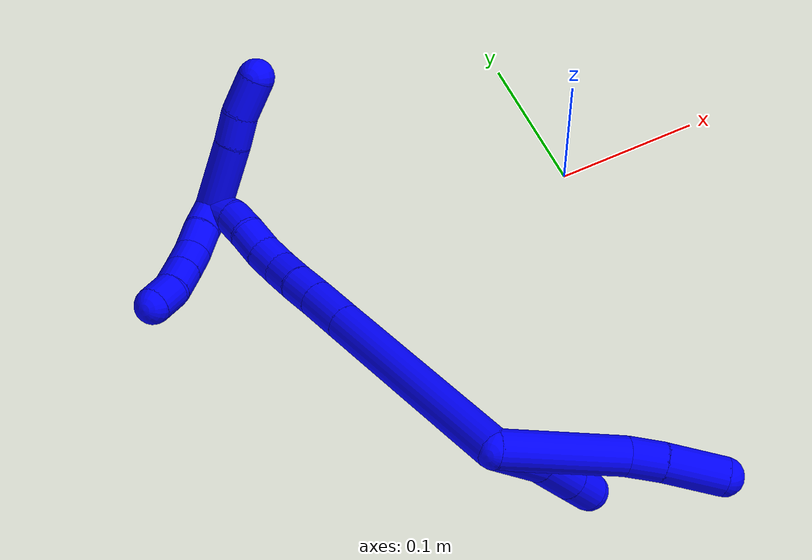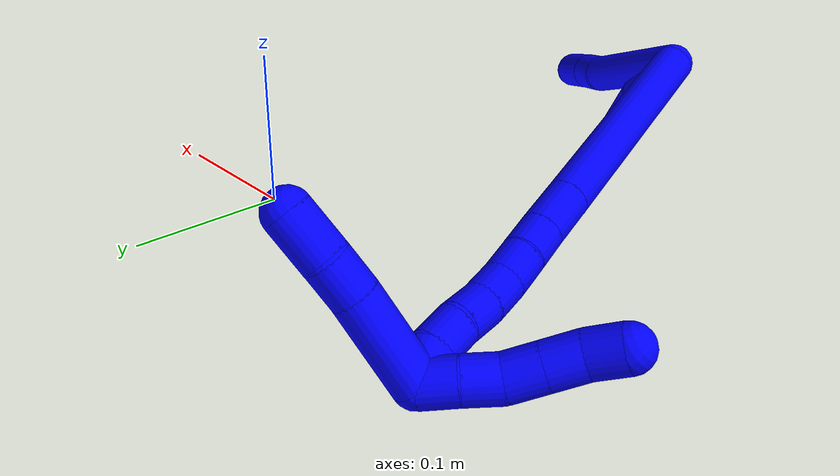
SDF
<sdf version="1.7">
 <world name="default">
  <model name="1">
   <static>0</static>
   <link name="1">
    <collision name="collision-cylinder-e_1_2_8">
     <pose>0.019351 -0.02609 -0.028247 2.39587 0.466243 1.09112</pose>
     <geometry><cylinder><radius>0.0125</radius><length>0.086095</length></cylinder></geometry>
     <surface>
      <friction><ode><mu>1.16</mu><mu2>1.16</mu2><slip1>0</slip1><slip2>0</slip2></ode></friction>
      <contact><ode><kp>1e+06</kp><kd>1</kd><max_vel>0</max_vel><min_depth>0.001</min_depth></ode></contact>
     </surface>
    </collision>
    <visual name="visual-cylinder-e_1_2_8">
     <pose>0.019351 -0.02609 -0.028247 2.39587 0.466243 1.09112</pose>
     <geometry><cylinder><radius>0.0125</radius><length>0.086095</length></cylinder></geometry>
     <material><ambient>0 0 1 1</ambient></material>
    </visual>
    <collision name="collision-cylinder-e_2_8_9">
     <pose>0.044976 -0.060756 -0.06206 2.14649 0.550356 0.958788</pose>
     <geometry><cylinder><radius>0.0125</radius><length>0.023989</length></cylinder></geometry>
     <surface>
      <friction><ode><mu>1.16</mu><mu2>1.16</mu2><slip1>0</slip1><slip2>0</slip2></ode></friction>
      <contact><ode><kp>1e+06</kp><kd>1</kd><max_vel>0</max_vel><min_depth>0.001</min_depth></ode></contact>
     </surface>
    </collision>
    <visual name="visual-cylinder-e_2_8_9">
     <pose>0.044976 -0.060756 -0.06206 2.14649 0.550356 0.958788</pose>
     <geometry><cylinder><radius>0.0125</radius><length>0.023989</length></cylinder></geometry>
     <material><ambient>0 0 1 1</ambient></material>
    </visual>
    <collision name="collision-cylinder-e_3_9_6">
     <pose>0.060638 -0.084378 -0.076779 2.11732 0.48981 0.836656</pose>
     <geometry><cylinder><radius>0.0125</radius><length>0.039916</length></cylinder></geometry>
     <surface>
      <friction><ode><mu>1.16</mu><mu2>1.16</mu2><slip1>0</slip1><slip2>0</slip2></ode></friction>
      <contact><ode><kp>1e+06</kp><kd>1</kd><max_vel>0</max_vel><min_depth>0.001</min_depth></ode></contact>
     </surface>
    </collision>
    <visual name="visual-cylinder-e_3_9_6">
     <pose>0.060638 -0.084378 -0.076779 2.11732 0.48981 0.836656</pose>
     <geometry><cylinder><radius>0.0125</radius><length>0.039916</length></cylinder></geometry>
     <material><ambient>0 0 1 1</ambient></material>
    </visual>
    <collision name="collision-cylinder-e_1_2_10">
     <pose>0.000796 -0.012006 -0.016969 2.52581 0.038287 0.120269</pose>
     <geometry><cylinder><radius>0.0125</radius><length>0.041604</length></cylinder></geometry>
     <surface>
      <friction><ode><mu>1.16</mu><mu2>1.16</mu2><slip1>0</slip1><slip2>0</slip2></ode></friction>
      <contact><ode><kp>1e+06</kp><kd>1</kd><max_vel>0</max_vel><min_depth>0.001</min_depth></ode></contact>
     </surface>
    </collision>
    <visual name="visual-cylinder-e_1_2_10">
     <pose>0.000796 -0.012006 -0.016969 2.52581 0.038287 0.120269</pose>
     <geometry><cylinder><radius>0.0125</radius><length>0.041604</length></cylinder></geometry>
     <material><ambient>0 0 1 1</ambient></material>
    </visual>
    <collision name="collision-cylinder-e_2_10_11">
     <pose>-0.000734 -0.034675 -0.04739 2.47139 -0.134705 -0.38267</pose>
     <geometry><cylinder><radius>0.0125</radius><length>0.034646</length></cylinder></geometry>
     <surface>
      <friction><ode><mu>1.16</mu><mu2>1.16</mu2><slip1>0</slip1><slip2>0</slip2></ode></friction>
      <contact><ode><kp>1e+06</kp><kd>1</kd><max_vel>0</max_vel><min_depth>0.001</min_depth></ode></contact>
     </surface>
    </collision>
    <visual name="visual-cylinder-e_2_10_11">
     <pose>-0.000734 -0.034675 -0.04739 2.47139 -0.134705 -0.38267</pose>
     <geometry><cylinder><radius>0.0125</radius><length>0.034646</length></cylinder></geometry>
     <material><ambient>0 0 1 1</ambient></material>
    </visual>
    <collision name="collision-cylinder-e_3_11_5">
     <pose>-0.004501 -0.052752 -0.070007 2.46135 -0.121648 -0.340848</pose>
     <geometry><cylinder><radius>0.0125</radius><length>0.02375</length></cylinder></geometry>
     <surface>
      <friction><ode><mu>1.16</mu><mu2>1.16</mu2><slip1>0</slip1><slip2>0</slip2></ode></friction>
      <contact><ode><kp>1e+06</kp><kd>1</kd><max_vel>0</max_vel><min_depth>0.001</min_depth></ode></contact>
     </surface>
    </collision>
    <visual name="visual-cylinder-e_3_11_5">
     <pose>-0.004501 -0.052752 -0.070007 2.46135 -0.121648 -0.340848</pose>
     <geometry><cylinder><radius>0.0125</radius><length>0.02375</length></cylinder></geometry>
     <material><ambient>0 0 1 1</ambient></material>
    </visual>
    <collision name="collision-cylinder-e_1_2_12">
     <pose>-0.033167 0.057655 -0.033375 -2.09553 -0.461944 0.774527</pose>
     <geometry><cylinder><radius>0.0125</radius><length>0.148836</length></cylinder></geometry>
     <surface>
      <friction><ode><mu>1.16</mu><mu2>1.16</mu2><slip1>0</slip1><slip2>0</slip2></ode></friction>
      <contact><ode><kp>1e+06</kp><kd>1</kd><max_vel>0</max_vel><min_depth>0.001</min_depth></ode></contact>
     </surface>
    </collision>
    <visual name="visual-cylinder-e_1_2_12">
     <pose>-0.033167 0.057655 -0.033375 -2.09553 -0.461944 0.774527</pose>
     <geometry><cylinder><radius>0.0125</radius><length>0.148836</length></cylinder></geometry>
     <material><ambient>0 0 1 1</ambient></material>
    </visual>
    <collision name="collision-cylinder-e_2_12_13">
     <pose>-0.073022 0.127048 -0.073546 -2.09564 -0.458087 0.768553</pose>
     <geometry><cylinder><radius>0.0125</radius><length>0.030246</length></cylinder></geometry>
     <surface>
      <friction><ode><mu>1.16</mu><mu2>1.16</mu2><slip1>0</slip1><slip2>0</slip2></ode></friction>
      <contact><ode><kp>1e+06</kp><kd>1</kd><max_vel>0</max_vel><min_depth>0.001</min_depth></ode></contact>
     </surface>
    </collision>
    <visual name="visual-cylinder-e_2_12_13">
     <pose>-0.073022 0.127048 -0.073546 -2.09564 -0.458087 0.768553</pose>
     <geometry><cylinder><radius>0.0125</radius><length>0.030246</length></cylinder></geometry>
     <material><ambient>0 0 1 1</ambient></material>
    </visual>
    <collision name="collision-cylinder-e_3_13_14">
     <pose>-0.084422 0.146901 -0.084722 -2.06579 -0.472416 0.766988</pose>
     <geometry><cylinder><radius>0.0125</radius><length>0.02071</length></cylinder></geometry>
     <surface>
      <friction><ode><mu>1.16</mu><mu2>1.16</mu2><slip1>0</slip1><slip2>0</slip2></ode></friction>
      <contact><ode><kp>1e+06</kp><kd>1</kd><max_vel>0</max_vel><min_depth>0.001</min_depth></ode></contact>
     </surface>
    </collision>
    <visual name="visual-cylinder-e_3_13_14">
     <pose>-0.084422 0.146901 -0.084722 -2.06579 -0.472416 0.766988</pose>
     <geometry><cylinder><radius>0.0125</radius><length>0.02071</length></cylinder></geometry>
     <material><ambient>0 0 1 1</ambient></material>
    </visual>
    <collision name="collision-cylinder-e_4_14_15">
     <pose>-0.093744 0.162376 -0.094261 -2.18206 -0.47382 0.868926</pose>
     <geometry><cylinder><radius>0.0125</radius><length>0.020203</length></cylinder></geometry>
     <surface>
      <friction><ode><mu>1.16</mu><mu2>1.16</mu2><slip1>0</slip1><slip2>0</slip2></ode></friction>
      <contact><ode><kp>1e+06</kp><kd>1</kd><max_vel>0</max_vel><min_depth>0.001</min_depth></ode></contact>
     </surface>
    </collision>
    <visual name="visual-cylinder-e_4_14_15">
     <pose>-0.093744 0.162376 -0.094261 -2.18206 -0.47382 0.868926</pose>
     <geometry><cylinder><radius>0.0125</radius><length>0.020203</length></cylinder></geometry>
     <material><ambient>0 0 1 1</ambient></material>
    </visual>
    <collision name="collision-cylinder-e_5_15_16">
     <pose>-0.10217 0.17804 -0.103485 -2.02612 -0.391609 0.61571</pose>
     <geometry><cylinder><radius>0.0125</radius><length>0.020003</length></cylinder></geometry>
     <surface>
      <friction><ode><mu>1.16</mu><mu2>1.16</mu2><slip1>0</slip1><slip2>0</slip2></ode></friction>
      <contact><ode><kp>1e+06</kp><kd>1</kd><max_vel>0</max_vel><min_depth>0.001</min_depth></ode></contact>
     </surface>
    </collision>
    <visual name="visual-cylinder-e_5_15_16">
     <pose>-0.10217 0.17804 -0.103485 -2.02612 -0.391609 0.61571</pose>
     <geometry><cylinder><radius>0.0125</radius><length>0.020003</length></cylinder></geometry>
     <material><ambient>0 0 1 1</ambient></material>
    </visual>
    <collision name="collision-cylinder-e_6_16_17">
     <pose>-0.108694 0.195161 -0.111411 -1.98338 -0.274033 0.415636</pose>
     <geometry><cylinder><radius>0.0125</radius><length>0.02</length></cylinder></geometry>
     <surface>
      <friction><ode><mu>1.16</mu><mu2>1.16</mu2><slip1>0</slip1><slip2>0</slip2></ode></friction>
      <contact><ode><kp>1e+06</kp><kd>1</kd><max_vel>0</max_vel><min_depth>0.001</min_depth></ode></contact>
     </surface>
    </collision>
    <visual name="visual-cylinder-e_6_16_17">
     <pose>-0.108694 0.195161 -0.111411 -1.98338 -0.274033 0.415636</pose>
     <geometry><cylinder><radius>0.0125</radius><length>0.02</length></cylinder></geometry>
     <material><ambient>0 0 1 1</ambient></material>
    </visual>
    <collision name="collision-cylinder-e_7_17_18">
     <pose>-0.115143 0.211743 -0.120345 -2.1497 -0.383611 0.689193</pose>
     <geometry><cylinder><radius>0.0125</radius><length>0.020001</length></cylinder></geometry>
     <surface>
      <friction><ode><mu>1.16</mu><mu2>1.16</mu2><slip1>0</slip1><slip2>0</slip2></ode></friction>
      <contact><ode><kp>1e+06</kp><kd>1</kd><max_vel>0</max_vel><min_depth>0.001</min_depth></ode></contact>
     </surface>
    </collision>
    <visual name="visual-cylinder-e_7_17_18">
     <pose>-0.115143 0.211743 -0.120345 -2.1497 -0.383611 0.689193</pose>
     <geometry><cylinder><radius>0.0125</radius><length>0.020001</length></cylinder></geometry>
     <material><ambient>0 0 1 1</ambient></material>
    </visual>
    <collision name="collision-cylinder-e_8_18_1">
     <pose>-0.124983 0.226666 -0.128817 -2.01401 -0.655673 0.987077</pose>
     <geometry><cylinder><radius>0.0125</radius><length>0.02</length></cylinder></geometry>
     <surface>
      <friction><ode><mu>1.16</mu><mu2>1.16</mu2><slip1>0</slip1><slip2>0</slip2></ode></friction>
      <contact><ode><kp>1e+06</kp><kd>1</kd><max_vel>0</max_vel><min_depth>0.001</min_depth></ode></contact>
     </surface>
    </collision>
    <visual name="visual-cylinder-e_8_18_1">
     <pose>-0.124983 0.226666 -0.128817 -2.01401 -0.655673 0.987077</pose>
     <geometry><cylinder><radius>0.0125</radius><length>0.02</length></cylinder></geometry>
     <material><ambient>0 0 1 1</ambient></material>
    </visual>
    <collision name="collision-cylinder-e_1_1_19">
     <pose>-0.108716 0.245962 -0.12997 -1.3877 1.06655 -0.912916</pose>
     <geometry><cylinder><radius>0.0125</radius><length>0.051086</length></cylinder></geometry>
     <surface>
      <friction><ode><mu>1.16</mu><mu2>1.16</mu2><slip1>0</slip1><slip2>0</slip2></ode></friction>
      <contact><ode><kp>1e+06</kp><kd>1</kd><max_vel>0</max_vel><min_depth>0.001</min_depth></ode></contact>
     </surface>
    </collision>
    <visual name="visual-cylinder-e_1_1_19">
     <pose>-0.108716 0.245962 -0.12997 -1.3877 1.06655 -0.912916</pose>
     <geometry><cylinder><radius>0.0125</radius><length>0.051086</length></cylinder></geometry>
     <material><ambient>0 0 1 1</ambient></material>
    </visual>
    <collision name="collision-cylinder-e_2_19_20">
     <pose>-0.077275 0.263837 -0.127152 -1.47168 1.00465 -0.92314</pose>
     <geometry><cylinder><radius>0.0125</radius><length>0.021511</length></cylinder></geometry>
     <surface>
      <friction><ode><mu>1.16</mu><mu2>1.16</mu2><slip1>0</slip1><slip2>0</slip2></ode></friction>
      <contact><ode><kp>1e+06</kp><kd>1</kd><max_vel>0</max_vel><min_depth>0.001</min_depth></ode></contact>
     </surface>
    </collision>
    <visual name="visual-cylinder-e_2_19_20">
     <pose>-0.077275 0.263837 -0.127152 -1.47168 1.00465 -0.92314</pose>
     <geometry><cylinder><radius>0.0125</radius><length>0.021511</length></cylinder></geometry>
     <material><ambient>0 0 1 1</ambient></material>
    </visual>
    <collision name="collision-cylinder-e_3_20_4">
     <pose>-0.055737 0.275237 -0.127256 -1.68954 1.14184 -1.25257</pose>
     <geometry><cylinder><radius>0.0125</radius><length>0.027403</length></cylinder></geometry>
     <surface>
      <friction><ode><mu>1.16</mu><mu2>1.16</mu2><slip1>0</slip1><slip2>0</slip2></ode></friction>
      <contact><ode><kp>1e+06</kp><kd>1</kd><max_vel>0</max_vel><min_depth>0.001</min_depth></ode></contact>
     </surface>
    </collision>
    <visual name="visual-cylinder-e_3_20_4">
     <pose>-0.055737 0.275237 -0.127256 -1.68954 1.14184 -1.25257</pose>
     <geometry><cylinder><radius>0.0125</radius><length>0.027403</length></cylinder></geometry>
     <material><ambient>0 0 1 1</ambient></material>
    </visual>
    <collision name="collision-cylinder-e_1_1_21">
     <pose>-0.1347 0.229656 -0.12388 0.463906 -0.37045 -0.088459</pose>
     <geometry><cylinder><radius>0.0125</radius><length>0.02</length></cylinder></geometry>
     <surface>
      <friction><ode><mu>1.16</mu><mu2>1.16</mu2><slip1>0</slip1><slip2>0</slip2></ode></friction>
      <contact><ode><kp>1e+06</kp><kd>1</kd><max_vel>0</max_vel><min_depth>0.001</min_depth></ode></contact>
     </surface>
    </collision>
    <visual name="visual-cylinder-e_1_1_21">
     <pose>-0.1347 0.229656 -0.12388 0.463906 -0.37045 -0.088459</pose>
     <geometry><cylinder><radius>0.0125</radius><length>0.02</length></cylinder></geometry>
     <material><ambient>0 0 1 1</ambient></material>
    </visual>
    <collision name="collision-cylinder-e_2_21_22">
     <pose>-0.142109 0.220438 -0.107787 0.576845 -0.38861 -0.11664</pose>
     <geometry><cylinder><radius>0.0125</radius><length>0.02</length></cylinder></geometry>
     <surface>
      <friction><ode><mu>1.16</mu><mu2>1.16</mu2><slip1>0</slip1><slip2>0</slip2></ode></friction>
      <contact><ode><kp>1e+06</kp><kd>1</kd><max_vel>0</max_vel><min_depth>0.001</min_depth></ode></contact>
     </surface>
    </collision>
    <visual name="visual-cylinder-e_2_21_22">
     <pose>-0.142109 0.220438 -0.107787 0.576845 -0.38861 -0.11664</pose>
     <geometry><cylinder><radius>0.0125</radius><length>0.02</length></cylinder></geometry>
     <material><ambient>0 0 1 1</ambient></material>
    </visual>
    <collision name="collision-cylinder-e_3_22_23">
     <pose>-0.147665 0.211712 -0.0909 0.382996 -0.177582 -0.034516</pose>
     <geometry><cylinder><radius>0.0125</radius><length>0.02</length></cylinder></geometry>
     <surface>
      <friction><ode><mu>1.16</mu><mu2>1.16</mu2><slip1>0</slip1><slip2>0</slip2></ode></friction>
      <contact><ode><kp>1e+06</kp><kd>1</kd><max_vel>0</max_vel><min_depth>0.001</min_depth></ode></contact>
     </surface>
    </collision>
    <visual name="visual-cylinder-e_3_22_23">
     <pose>-0.147665 0.211712 -0.0909 0.382996 -0.177582 -0.034516</pose>
     <geometry><cylinder><radius>0.0125</radius><length>0.02</length></cylinder></geometry>
     <material><ambient>0 0 1 1</ambient></material>
    </visual>
    <collision name="collision-cylinder-e_4_23_24">
     <pose>-0.151206 0.204555 -0.072565 0.361352 -0.178394 -0.032671</pose>
     <geometry><cylinder><radius>0.0125</radius><length>0.02</length></cylinder></geometry>
     <surface>
      <friction><ode><mu>1.16</mu><mu2>1.16</mu2><slip1>0</slip1><slip2>0</slip2></ode></friction>
      <contact><ode><kp>1e+06</kp><kd>1</kd><max_vel>0</max_vel><min_depth>0.001</min_depth></ode></contact>
     </surface>
    </collision>
    <visual name="visual-cylinder-e_4_23_24">
     <pose>-0.151206 0.204555 -0.072565 0.361352 -0.178394 -0.032671</pose>
     <geometry><cylinder><radius>0.0125</radius><length>0.02</length></cylinder></geometry>
     <material><ambient>0 0 1 1</ambient></material>
    </visual>
    <collision name="collision-cylinder-e_5_24_3">
     <pose>-0.156098 0.199839 -0.053938 0.130565 -0.317033 -0.020901</pose>
     <geometry><cylinder><radius>0.0125</radius><length>0.02</length></cylinder></geometry>
     <surface>
      <friction><ode><mu>1.16</mu><mu2>1.16</mu2><slip1>0</slip1><slip2>0</slip2></ode></friction>
      <contact><ode><kp>1e+06</kp><kd>1</kd><max_vel>0</max_vel><min_depth>0.001</min_depth></ode></contact>
     </surface>
    </collision>
    <visual name="visual-cylinder-e_5_24_3">
     <pose>-0.156098 0.199839 -0.053938 0.130565 -0.317033 -0.020901</pose>
     <geometry><cylinder><radius>0.0125</radius><length>0.02</length></cylinder></geometry>
     <material><ambient>0 0 1 1</ambient></material>
    </visual>
    <collision name="collision-sphere-3">
     <pose>-0.159215 0.198601 -0.044518 0 -0 0</pose>
     <geometry><sphere><radius>0.0125</radius></sphere></geometry>
     <surface>
      <friction><ode><mu>1.16</mu><mu2>1.16</mu2><slip1>0</slip1><slip2>0</slip2></ode></friction>
      <contact><ode><kp>1e+06</kp><kd>1</kd><max_vel>0</max_vel><min_depth>0.001</min_depth></ode></contact>
     </surface>
    </collision>
    <visual name="visual-sphere-3">
     <pose>-0.159215 0.198601 -0.044518 0 -0 0</pose>
     <geometry><sphere><radius>0.0125</radius></sphere></geometry>
     <material><ambient>0 0 1 1</ambient></material>
    </visual>
    <collision name="collision-sphere-24">
     <pose>-0.15298 0.201076 -0.063359 0 -0 0</pose>
     <geometry><sphere><radius>0.0125</radius></sphere></geometry>
     <surface>
      <friction><ode><mu>1.16</mu><mu2>1.16</mu2><slip1>0</slip1><slip2>0</slip2></ode></friction>
      <contact><ode><kp>1e+06</kp><kd>1</kd><max_vel>0</max_vel><min_depth>0.001</min_depth></ode></contact>
     </surface>
    </collision>
    <visual name="visual-sphere-24">
     <pose>-0.15298 0.201076 -0.063359 0 -0 0</pose>
     <geometry><sphere><radius>0.0125</radius></sphere></geometry>
     <material><ambient>0 0 1 1</ambient></material>
    </visual>
    <collision name="collision-sphere-23">
     <pose>-0.149431 0.208034 -0.081771 0 -0 0</pose>
     <geometry><sphere><radius>0.0125</radius></sphere></geometry>
     <surface>
      <friction><ode><mu>1.16</mu><mu2>1.16</mu2><slip1>0</slip1><slip2>0</slip2></ode></friction>
      <contact><ode><kp>1e+06</kp><kd>1</kd><max_vel>0</max_vel><min_depth>0.001</min_depth></ode></contact>
     </surface>
    </collision>
    <visual name="visual-sphere-23">
     <pose>-0.149431 0.208034 -0.081771 0 -0 0</pose>
     <geometry><sphere><radius>0.0125</radius></sphere></geometry>
     <material><ambient>0 0 1 1</ambient></material>
    </visual>
    <collision name="collision-sphere-22">
     <pose>-0.145898 0.215391 -0.10003 0 -0 0</pose>
     <geometry><sphere><radius>0.0125</radius></sphere></geometry>
     <surface>
      <friction><ode><mu>1.16</mu><mu2>1.16</mu2><slip1>0</slip1><slip2>0</slip2></ode></friction>
      <contact><ode><kp>1e+06</kp><kd>1</kd><max_vel>0</max_vel><min_depth>0.001</min_depth></ode></contact>
     </surface>
    </collision>
    <visual name="visual-sphere-22">
     <pose>-0.145898 0.215391 -0.10003 0 -0 0</pose>
     <geometry><sphere><radius>0.0125</radius></sphere></geometry>
     <material><ambient>0 0 1 1</ambient></material>
    </visual>
    <collision name="collision-sphere-21">
     <pose>-0.13832 0.225485 -0.115544 0 -0 0</pose>
     <geometry><sphere><radius>0.0125</radius></sphere></geometry>
     <surface>
      <friction><ode><mu>1.16</mu><mu2>1.16</mu2><slip1>0</slip1><slip2>0</slip2></ode></friction>
      <contact><ode><kp>1e+06</kp><kd>1</kd><max_vel>0</max_vel><min_depth>0.001</min_depth></ode></contact>
     </surface>
    </collision>
    <visual name="visual-sphere-21">
     <pose>-0.13832 0.225485 -0.115544 0 -0 0</pose>
     <geometry><sphere><radius>0.0125</radius></sphere></geometry>
     <material><ambient>0 0 1 1</ambient></material>
    </visual>
    <collision name="collision-sphere-4">
     <pose>-0.043277 0.280895 -0.127931 0 -0 0</pose>
     <geometry><sphere><radius>0.0125</radius></sphere></geometry>
     <surface>
      <friction><ode><mu>1.16</mu><mu2>1.16</mu2><slip1>0</slip1><slip2>0</slip2></ode></friction>
      <contact><ode><kp>1e+06</kp><kd>1</kd><max_vel>0</max_vel><min_depth>0.001</min_depth></ode></contact>
     </surface>
    </collision>
    <visual name="visual-sphere-4">
     <pose>-0.043277 0.280895 -0.127931 0 -0 0</pose>
     <geometry><sphere><radius>0.0125</radius></sphere></geometry>
     <material><ambient>0 0 1 1</ambient></material>
    </visual>
    <collision name="collision-sphere-20">
     <pose>-0.068197 0.269578 -0.126581 0 -0 0</pose>
     <geometry><sphere><radius>0.0125</radius></sphere></geometry>
     <surface>
      <friction><ode><mu>1.16</mu><mu2>1.16</mu2><slip1>0</slip1><slip2>0</slip2></ode></friction>
      <contact><ode><kp>1e+06</kp><kd>1</kd><max_vel>0</max_vel><min_depth>0.001</min_depth></ode></contact>
     </surface>
    </collision>
    <visual name="visual-sphere-20">
     <pose>-0.068197 0.269578 -0.126581 0 -0 0</pose>
     <geometry><sphere><radius>0.0125</radius></sphere></geometry>
     <material><ambient>0 0 1 1</ambient></material>
    </visual>
    <collision name="collision-sphere-11">
     <pose>-0.00306 -0.045338 -0.060843 0 -0 0</pose>
     <geometry><sphere><radius>0.0125</radius></sphere></geometry>
     <surface>
      <friction><ode><mu>1.16</mu><mu2>1.16</mu2><slip1>0</slip1><slip2>0</slip2></ode></friction>
      <contact><ode><kp>1e+06</kp><kd>1</kd><max_vel>0</max_vel><min_depth>0.001</min_depth></ode></contact>
     </surface>
    </collision>
    <visual name="visual-sphere-11">
     <pose>-0.00306 -0.045338 -0.060843 0 -0 0</pose>
     <geometry><sphere><radius>0.0125</radius></sphere></geometry>
     <material><ambient>0 0 1 1</ambient></material>
    </visual>
    <collision name="collision-sphere-10">
     <pose>0.001593 -0.024013 -0.033938 0 -0 0</pose>
     <geometry><sphere><radius>0.0125</radius></sphere></geometry>
     <surface>
      <friction><ode><mu>1.16</mu><mu2>1.16</mu2><slip1>0</slip1><slip2>0</slip2></ode></friction>
      <contact><ode><kp>1e+06</kp><kd>1</kd><max_vel>0</max_vel><min_depth>0.001</min_depth></ode></contact>
     </surface>
    </collision>
    <visual name="visual-sphere-10">
     <pose>0.001593 -0.024013 -0.033938 0 -0 0</pose>
     <geometry><sphere><radius>0.0125</radius></sphere></geometry>
     <material><ambient>0 0 1 1</ambient></material>
    </visual>
    <collision name="collision-sphere-6">
     <pose>0.070027 -0.099424 -0.085932 0 -0 0</pose>
     <geometry><sphere><radius>0.0125</radius></sphere></geometry>
     <surface>
      <friction><ode><mu>1.16</mu><mu2>1.16</mu2><slip1>0</slip1><slip2>0</slip2></ode></friction>
      <contact><ode><kp>1e+06</kp><kd>1</kd><max_vel>0</max_vel><min_depth>0.001</min_depth></ode></contact>
     </surface>
    </collision>
    <visual name="visual-sphere-6">
     <pose>0.070027 -0.099424 -0.085932 0 -0 0</pose>
     <geometry><sphere><radius>0.0125</radius></sphere></geometry>
     <material><ambient>0 0 1 1</ambient></material>
    </visual>
    <collision name="collision-sphere-9">
     <pose>0.051249 -0.069332 -0.067626 0 -0 0</pose>
     <geometry><sphere><radius>0.0125</radius></sphere></geometry>
     <surface>
      <friction><ode><mu>1.16</mu><mu2>1.16</mu2><slip1>0</slip1><slip2>0</slip2></ode></friction>
      <contact><ode><kp>1e+06</kp><kd>1</kd><max_vel>0</max_vel><min_depth>0.001</min_depth></ode></contact>
     </surface>
    </collision>
    <visual name="visual-sphere-9">
     <pose>0.051249 -0.069332 -0.067626 0 -0 0</pose>
     <geometry><sphere><radius>0.0125</radius></sphere></geometry>
     <material><ambient>0 0 1 1</ambient></material>
    </visual>
    <collision name="collision-sphere-2">
     <geometry><sphere><radius>0.0125</radius></sphere></geometry>
     <surface>
      <friction><ode><mu>1.16</mu><mu2>1.16</mu2><slip1>0</slip1><slip2>0</slip2></ode></friction>
      <contact><ode><kp>1e+06</kp><kd>1</kd><max_vel>0</max_vel><min_depth>0.001</min_depth></ode></contact>
     </surface>
    </collision>
    <visual name="visual-sphere-2">
     <geometry><sphere><radius>0.0125</radius></sphere></geometry>
     <material><ambient>0 0 1 1</ambient></material>
    </visual>
    <collision name="collision-sphere-19">
     <pose>-0.086352 0.258097 -0.127723 0 -0 0</pose>
     <geometry><sphere><radius>0.0125</radius></sphere></geometry>
     <surface>
      <friction><ode><mu>1.16</mu><mu2>1.16</mu2><slip1>0</slip1><slip2>0</slip2></ode></friction>
      <contact><ode><kp>1e+06</kp><kd>1</kd><max_vel>0</max_vel><min_depth>0.001</min_depth></ode></contact>
     </surface>
    </collision>
    <visual name="visual-sphere-19">
     <pose>-0.086352 0.258097 -0.127723 0 -0 0</pose>
     <geometry><sphere><radius>0.0125</radius></sphere></geometry>
     <material><ambient>0 0 1 1</ambient></material>
    </visual>
    <collision name="collision-sphere-8">
     <pose>0.038702 -0.05218 -0.056494 0 -0 0</pose>
     <geometry><sphere><radius>0.0125</radius></sphere></geometry>
     <surface>
      <friction><ode><mu>1.16</mu><mu2>1.16</mu2><slip1>0</slip1><slip2>0</slip2></ode></friction>
      <contact><ode><kp>1e+06</kp><kd>1</kd><max_vel>0</max_vel><min_depth>0.001</min_depth></ode></contact>
     </surface>
    </collision>
    <visual name="visual-sphere-8">
     <pose>0.038702 -0.05218 -0.056494 0 -0 0</pose>
     <geometry><sphere><radius>0.0125</radius></sphere></geometry>
     <material><ambient>0 0 1 1</ambient></material>
    </visual>
    <collision name="collision-sphere-5">
     <pose>-0.005942 -0.060166 -0.079171 0 -0 0</pose>
     <geometry><sphere><radius>0.0125</radius></sphere></geometry>
     <surface>
      <friction><ode><mu>1.16</mu><mu2>1.16</mu2><slip1>0</slip1><slip2>0</slip2></ode></friction>
      <contact><ode><kp>1e+06</kp><kd>1</kd><max_vel>0</max_vel><min_depth>0.001</min_depth></ode></contact>
     </surface>
    </collision>
    <visual name="visual-sphere-5">
     <pose>-0.005942 -0.060166 -0.079171 0 -0 0</pose>
     <geometry><sphere><radius>0.0125</radius></sphere></geometry>
     <material><ambient>0 0 1 1</ambient></material>
    </visual>
    <collision name="collision-sphere-12">
     <pose>-0.066334 0.11531 -0.066749 0 -0 0</pose>
     <geometry><sphere><radius>0.0125</radius></sphere></geometry>
     <surface>
      <friction><ode><mu>1.16</mu><mu2>1.16</mu2><slip1>0</slip1><slip2>0</slip2></ode></friction>
      <contact><ode><kp>1e+06</kp><kd>1</kd><max_vel>0</max_vel><min_depth>0.001</min_depth></ode></contact>
     </surface>
    </collision>
    <visual name="visual-sphere-12">
     <pose>-0.066334 0.11531 -0.066749 0 -0 0</pose>
     <geometry><sphere><radius>0.0125</radius></sphere></geometry>
     <material><ambient>0 0 1 1</ambient></material>
    </visual>
    <collision name="collision-sphere-13">
     <pose>-0.07971 0.138786 -0.080342 0 -0 0</pose>
     <geometry><sphere><radius>0.0125</radius></sphere></geometry>
     <surface>
      <friction><ode><mu>1.16</mu><mu2>1.16</mu2><slip1>0</slip1><slip2>0</slip2></ode></friction>
      <contact><ode><kp>1e+06</kp><kd>1</kd><max_vel>0</max_vel><min_depth>0.001</min_depth></ode></contact>
     </surface>
    </collision>
    <visual name="visual-sphere-13">
     <pose>-0.07971 0.138786 -0.080342 0 -0 0</pose>
     <geometry><sphere><radius>0.0125</radius></sphere></geometry>
     <material><ambient>0 0 1 1</ambient></material>
    </visual>
    <collision name="collision-sphere-14">
     <pose>-0.089134 0.155015 -0.089103 0 -0 0</pose>
     <geometry><sphere><radius>0.0125</radius></sphere></geometry>
     <surface>
      <friction><ode><mu>1.16</mu><mu2>1.16</mu2><slip1>0</slip1><slip2>0</slip2></ode></friction>
      <contact><ode><kp>1e+06</kp><kd>1</kd><max_vel>0</max_vel><min_depth>0.001</min_depth></ode></contact>
     </surface>
    </collision>
    <visual name="visual-sphere-14">
     <pose>-0.089134 0.155015 -0.089103 0 -0 0</pose>
     <geometry><sphere><radius>0.0125</radius></sphere></geometry>
     <material><ambient>0 0 1 1</ambient></material>
    </visual>
    <collision name="collision-sphere-15">
     <pose>-0.098353 0.169737 -0.09942 0 -0 0</pose>
     <geometry><sphere><radius>0.0125</radius></sphere></geometry>
     <surface>
      <friction><ode><mu>1.16</mu><mu2>1.16</mu2><slip1>0</slip1><slip2>0</slip2></ode></friction>
      <contact><ode><kp>1e+06</kp><kd>1</kd><max_vel>0</max_vel><min_depth>0.001</min_depth></ode></contact>
     </surface>
    </collision>
    <visual name="visual-sphere-15">
     <pose>-0.098353 0.169737 -0.09942 0 -0 0</pose>
     <geometry><sphere><radius>0.0125</radius></sphere></geometry>
     <material><ambient>0 0 1 1</ambient></material>
    </visual>
    <collision name="collision-sphere-16">
     <pose>-0.105988 0.186342 -0.107551 0 -0 0</pose>
     <geometry><sphere><radius>0.0125</radius></sphere></geometry>
     <surface>
      <friction><ode><mu>1.16</mu><mu2>1.16</mu2><slip1>0</slip1><slip2>0</slip2></ode></friction>
      <contact><ode><kp>1e+06</kp><kd>1</kd><max_vel>0</max_vel><min_depth>0.001</min_depth></ode></contact>
     </surface>
    </collision>
    <visual name="visual-sphere-16">
     <pose>-0.105988 0.186342 -0.107551 0 -0 0</pose>
     <geometry><sphere><radius>0.0125</radius></sphere></geometry>
     <material><ambient>0 0 1 1</ambient></material>
    </visual>
    <collision name="collision-sphere-17">
     <pose>-0.1114 0.203981 -0.115271 0 -0 0</pose>
     <geometry><sphere><radius>0.0125</radius></sphere></geometry>
     <surface>
      <friction><ode><mu>1.16</mu><mu2>1.16</mu2><slip1>0</slip1><slip2>0</slip2></ode></friction>
      <contact><ode><kp>1e+06</kp><kd>1</kd><max_vel>0</max_vel><min_depth>0.001</min_depth></ode></contact>
     </surface>
    </collision>
    <visual name="visual-sphere-17">
     <pose>-0.1114 0.203981 -0.115271 0 -0 0</pose>
     <geometry><sphere><radius>0.0125</radius></sphere></geometry>
     <material><ambient>0 0 1 1</ambient></material>
    </visual>
    <collision name="collision-sphere-18">
     <pose>-0.118886 0.219506 -0.125418 0 -0 0</pose>
     <geometry><sphere><radius>0.0125</radius></sphere></geometry>
     <surface>
      <friction><ode><mu>1.16</mu><mu2>1.16</mu2><slip1>0</slip1><slip2>0</slip2></ode></friction>
      <contact><ode><kp>1e+06</kp><kd>1</kd><max_vel>0</max_vel><min_depth>0.001</min_depth></ode></contact>
     </surface>
    </collision>
    <visual name="visual-sphere-18">
     <pose>-0.118886 0.219506 -0.125418 0 -0 0</pose>
     <geometry><sphere><radius>0.0125</radius></sphere></geometry>
     <material><ambient>0 0 1 1</ambient></material>
    </visual>
    <collision name="collision-sphere-1">
     <pose>-0.13108 0.233827 -0.132217 0 -0 0</pose>
     <geometry><sphere><radius>0.0125</radius></sphere></geometry>
     <surface>
      <friction><ode><mu>1.16</mu><mu2>1.16</mu2><slip1>0</slip1><slip2>0</slip2></ode></friction>
      <contact><ode><kp>1e+06</kp><kd>1</kd><max_vel>0</max_vel><min_depth>0.001</min_depth></ode></contact>
     </surface>
    </collision>
    <visual name="visual-sphere-1">
     <pose>-0.13108 0.233827 -0.132217 0 -0 0</pose>
     <geometry><sphere><radius>0.0125</radius></sphere></geometry>
     <material><ambient>0 0 1 1</ambient></material>
    </visual>
    <inertial>
     <pose>-0.050827 0.096082 -0.070629 0 -0 0</pose>
     <mass>0.75</mass>
     <inertia>
      <ixx>0.000466</ixx>
      <ixy>0</ixy>
      <ixz>0</ixz>
      <iyy>0.000211</iyy>
      <iyz>0</iyz>
      <izz>-0.000111</izz>
     </inertia>
    </inertial>
   </link>
   <pose>-0.16149 -0.206146 0.089859 0.558635 -0.719995 -0.134622</pose>
  </model>
 </world>
</sdf>
